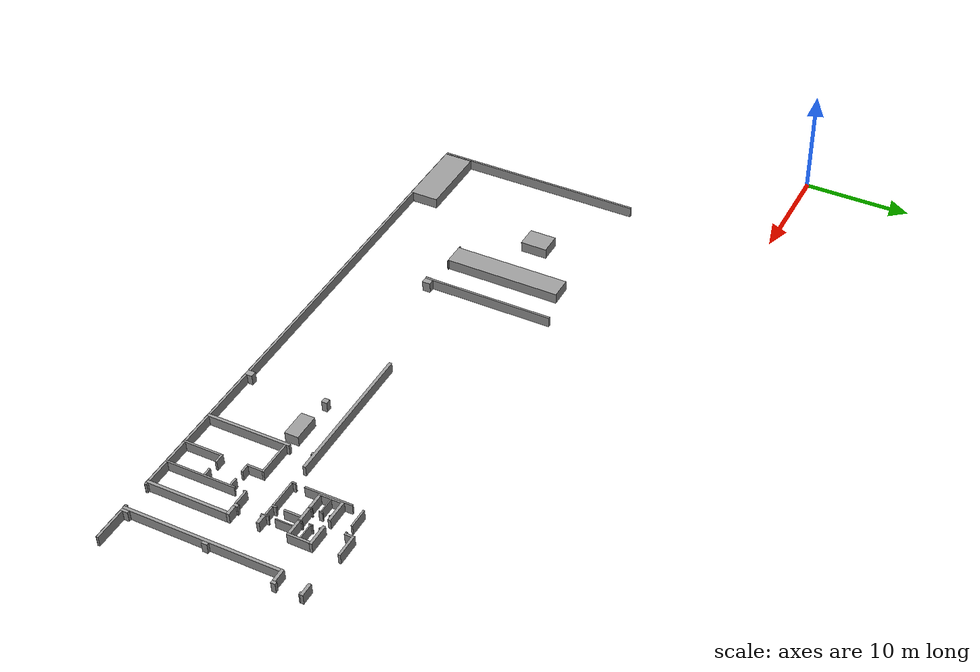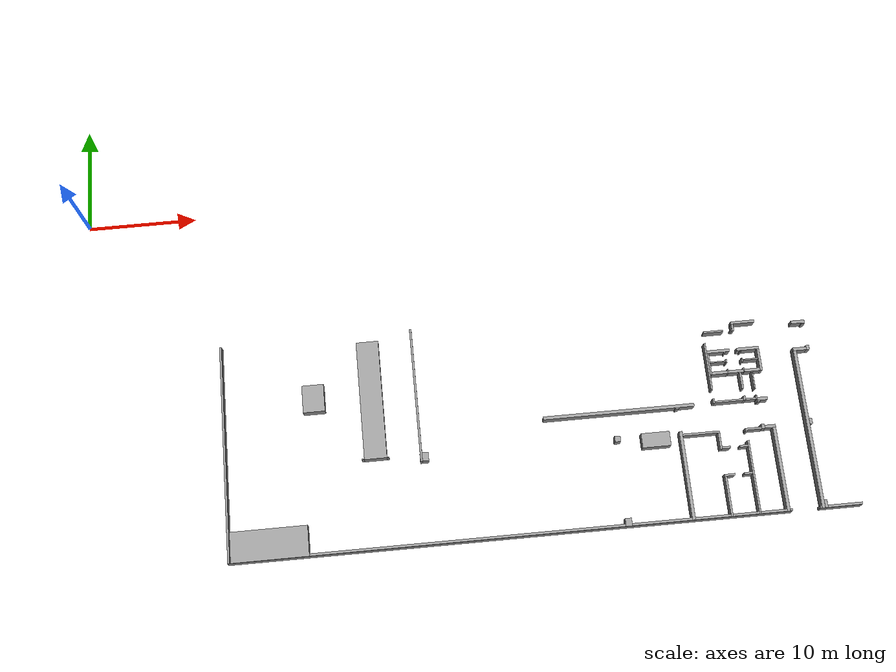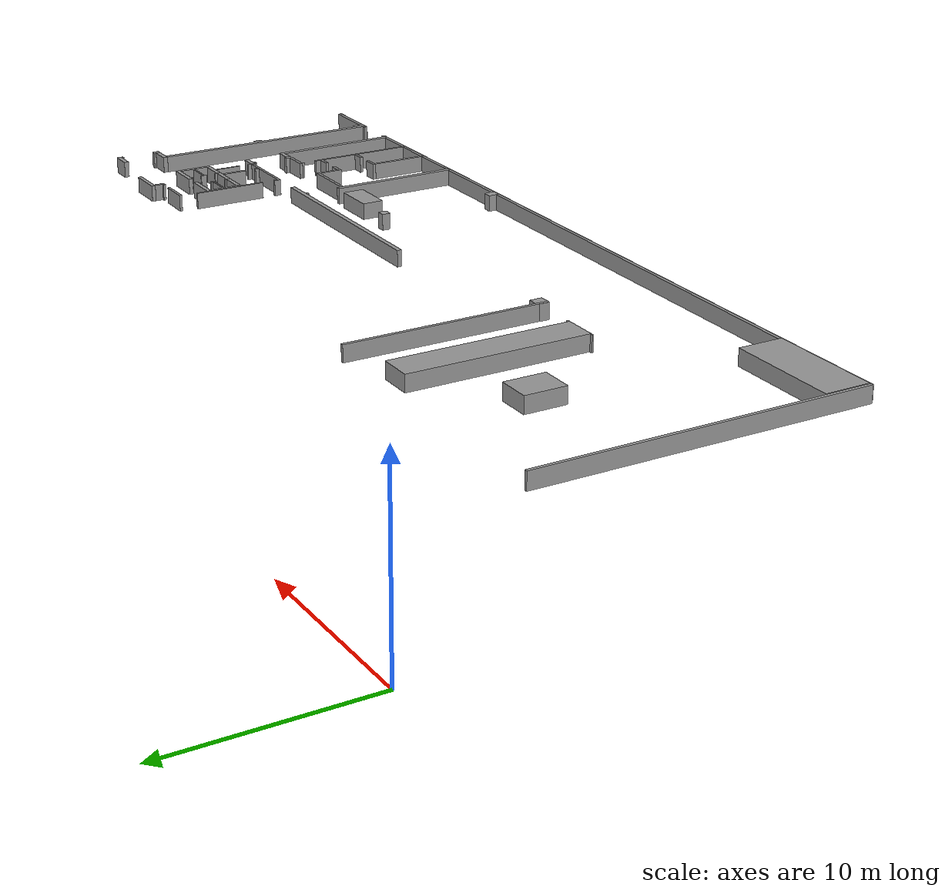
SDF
<sdf version="1.4">
 <model name="AdlerErfurtShopUpstairs">
  <static>1</static>
  <link name="Wall_76">
   <collision name="Wall_76_Collision">
    <geometry><box><size>0.17872 12.35745 1.00000</size></box></geometry>
    <pose>29.34894 -19.32766 0.50000 0 0 0.00000</pose>
   </collision>
   <visual name="Wall_76_Visual">
    <geometry><box><size>0.17872 12.35745 1.00000</size></box></geometry>
    <material>
     <script><uri>file://media/materials/scripts/gazebo.material</uri><name>Gazebo/Grey</name></script>
    </material>
    <pose>29.34894 -19.32766 0.50000 0 0 0.00000</pose>
   </visual>
  </link>
  <link name="Wall_77">
   <collision name="Wall_77_Collision">
    <geometry><box><size>0.17872 19.68511 1.00000</size></box></geometry>
    <pose>11.98723 -23.09362 0.50000 0 0 0.00000</pose>
   </collision>
   <visual name="Wall_77_Visual">
    <geometry><box><size>0.17872 19.68511 1.00000</size></box></geometry>
    <material>
     <script><uri>file://media/materials/scripts/gazebo.material</uri><name>Gazebo/Grey</name></script>
    </material>
    <pose>11.98723 -23.09362 0.50000 0 0 0.00000</pose>
   </visual>
  </link>
  <link name="Wall_78">
   <collision name="Wall_78_Collision">
    <geometry><box><size>2.01702 10.90213 1.00000</size></box></geometry>
    <pose>25.31489 -19.44255 0.50000 0 0 0.00000</pose>
   </collision>
   <visual name="Wall_78_Visual">
    <geometry><box><size>2.01702 10.90213 1.00000</size></box></geometry>
    <material>
     <script><uri>file://media/materials/scripts/gazebo.material</uri><name>Gazebo/Grey</name></script>
    </material>
    <pose>25.31489 -19.44255 0.50000 0 0 0.00000</pose>
   </visual>
  </link>
  <link name="Wall_79">
   <collision name="Wall_79_Collision">
    <geometry><box><size>2.14468 0.22979 1.00000</size></box></geometry>
    <pose>59.74468 -15.28085 0.50000 0 0 0.00000</pose>
   </collision>
   <visual name="Wall_79_Visual">
    <geometry><box><size>2.14468 0.22979 1.00000</size></box></geometry>
    <material>
     <script><uri>file://media/materials/scripts/gazebo.material</uri><name>Gazebo/Grey</name></script>
    </material>
    <pose>59.74468 -15.28085 0.50000 0 0 0.00000</pose>
   </visual>
  </link>
  <link name="Wall_80">
   <collision name="Wall_80_Collision">
    <geometry><box><size>0.17872 0.63830 1.00000</size></box></geometry>
    <pose>58.76170 -15.71489 0.50000 0 0 0.00000</pose>
   </collision>
   <visual name="Wall_80_Visual">
    <geometry><box><size>0.17872 0.63830 1.00000</size></box></geometry>
    <material>
     <script><uri>file://media/materials/scripts/gazebo.material</uri><name>Gazebo/Grey</name></script>
    </material>
    <pose>58.76170 -15.71489 0.50000 0 0 0.00000</pose>
   </visual>
  </link>
  <link name="Wall_81">
   <collision name="Wall_81_Collision">
    <geometry><box><size>1.22553 0.28085 1.00000</size></box></geometry>
    <pose>64.80000 -15.74043 0.50000 0 0 0.00000</pose>
   </collision>
   <visual name="Wall_81_Visual">
    <geometry><box><size>1.22553 0.28085 1.00000</size></box></geometry>
    <material>
     <script><uri>file://media/materials/scripts/gazebo.material</uri><name>Gazebo/Grey</name></script>
    </material>
    <pose>64.80000 -15.74043 0.50000 0 0 0.00000</pose>
   </visual>
  </link>
  <link name="Wall_82">
   <collision name="Wall_82_Collision">
    <geometry><box><size>1.81277 0.15319 1.00000</size></box></geometry>
    <pose>56.94894 -15.95745 0.50000 0 0 0.00000</pose>
   </collision>
   <visual name="Wall_82_Visual">
    <geometry><box><size>1.81277 0.15319 1.00000</size></box></geometry>
    <material>
     <script><uri>file://media/materials/scripts/gazebo.material</uri><name>Gazebo/Grey</name></script>
    </material>
    <pose>56.94894 -15.95745 0.50000 0 0 0.00000</pose>
   </visual>
  </link>
  <link name="Wall_83">
   <collision name="Wall_83_Collision">
    <geometry><box><size>0.12766 0.15319 1.00000</size></box></geometry>
    <pose>58.60851 -15.95745 0.50000 0 0 0.00000</pose>
   </collision>
   <visual name="Wall_83_Visual">
    <geometry><box><size>0.12766 0.15319 1.00000</size></box></geometry>
    <material>
     <script><uri>file://media/materials/scripts/gazebo.material</uri><name>Gazebo/Grey</name></script>
    </material>
    <pose>58.60851 -15.95745 0.50000 0 0 0.00000</pose>
   </visual>
  </link>
  <link name="Wall_84">
   <collision name="Wall_84_Collision">
    <geometry><box><size>0.28085 0.10213 1.00000</size></box></geometry>
    <pose>65.27234 -15.93191 0.50000 0 0 0.00000</pose>
   </collision>
   <visual name="Wall_84_Visual">
    <geometry><box><size>0.28085 0.10213 1.00000</size></box></geometry>
    <material>
     <script><uri>file://media/materials/scripts/gazebo.material</uri><name>Gazebo/Grey</name></script>
    </material>
    <pose>65.27234 -15.93191 0.50000 0 0 0.00000</pose>
   </visual>
  </link>
  <link name="Wall_85">
   <collision name="Wall_85_Collision">
    <geometry><box><size>0.15319 4.41702 1.00000</size></box></geometry>
    <pose>55.96596 -19.21277 0.50000 0 0 0.00000</pose>
   </collision>
   <visual name="Wall_85_Visual">
    <geometry><box><size>0.15319 4.41702 1.00000</size></box></geometry>
    <material>
     <script><uri>file://media/materials/scripts/gazebo.material</uri><name>Gazebo/Grey</name></script>
    </material>
    <pose>55.96596 -19.21277 0.50000 0 0 0.00000</pose>
   </visual>
  </link>
  <link name="Wall_86">
   <collision name="Wall_86_Collision">
    <geometry><box><size>1.96596 2.50213 1.00000</size></box></geometry>
    <pose>20.13191 -18.86809 0.50000 0 0 0.00000</pose>
   </collision>
   <visual name="Wall_86_Visual">
    <geometry><box><size>1.96596 2.50213 1.00000</size></box></geometry>
    <material>
     <script><uri>file://media/materials/scripts/gazebo.material</uri><name>Gazebo/Grey</name></script>
    </material>
    <pose>20.13191 -18.86809 0.50000 0 0 0.00000</pose>
   </visual>
  </link>
  <link name="Wall_87">
   <collision name="Wall_87_Collision">
    <geometry><box><size>2.06809 0.25532 1.00000</size></box></geometry>
    <pose>57.07660 -17.84681 0.50000 0 0 0.00000</pose>
   </collision>
   <visual name="Wall_87_Visual">
    <geometry><box><size>2.06809 0.25532 1.00000</size></box></geometry>
    <material>
     <script><uri>file://media/materials/scripts/gazebo.material</uri><name>Gazebo/Grey</name></script>
    </material>
    <pose>57.07660 -17.84681 0.50000 0 0 0.00000</pose>
   </visual>
  </link>
  <link name="Wall_88">
   <collision name="Wall_88_Collision">
    <geometry><box><size>2.01702 0.25532 1.00000</size></box></geometry>
    <pose>59.80851 -17.84681 0.50000 0 0 0.00000</pose>
   </collision>
   <visual name="Wall_88_Visual">
    <geometry><box><size>2.01702 0.25532 1.00000</size></box></geometry>
    <material>
     <script><uri>file://media/materials/scripts/gazebo.material</uri><name>Gazebo/Grey</name></script>
    </material>
    <pose>59.80851 -17.84681 0.50000 0 0 0.00000</pose>
   </visual>
  </link>
  <link name="Wall_89">
   <collision name="Wall_89_Collision">
    <geometry><box><size>0.15319 2.04255 1.00000</size></box></geometry>
    <pose>56.11915 -18.99574 0.50000 0 0 0.00000</pose>
   </collision>
   <visual name="Wall_89_Visual">
    <geometry><box><size>0.15319 2.04255 1.00000</size></box></geometry>
    <material>
     <script><uri>file://media/materials/scripts/gazebo.material</uri><name>Gazebo/Grey</name></script>
    </material>
    <pose>56.11915 -18.99574 0.50000 0 0 0.00000</pose>
   </visual>
  </link>
  <link name="Wall_90">
   <collision name="Wall_90_Collision">
    <geometry><box><size>0.10213 0.12766 1.00000</size></box></geometry>
    <pose>57.67660 -18.03830 0.50000 0 0 0.00000</pose>
   </collision>
   <visual name="Wall_90_Visual">
    <geometry><box><size>0.10213 0.12766 1.00000</size></box></geometry>
    <material>
     <script><uri>file://media/materials/scripts/gazebo.material</uri><name>Gazebo/Grey</name></script>
    </material>
    <pose>57.67660 -18.03830 0.50000 0 0 0.00000</pose>
   </visual>
  </link>
  <link name="Wall_91">
   <collision name="Wall_91_Collision">
    <geometry><box><size>0.10213 0.12766 1.00000</size></box></geometry>
    <pose>59.13191 -18.03830 0.50000 0 0 0.00000</pose>
   </collision>
   <visual name="Wall_91_Visual">
    <geometry><box><size>0.10213 0.12766 1.00000</size></box></geometry>
    <material>
     <script><uri>file://media/materials/scripts/gazebo.material</uri><name>Gazebo/Grey</name></script>
    </material>
    <pose>59.13191 -18.03830 0.50000 0 0 0.00000</pose>
   </visual>
  </link>
  <link name="Wall_92">
   <collision name="Wall_92_Collision">
    <geometry><box><size>0.20426 2.04255 1.00000</size></box></geometry>
    <pose>60.71489 -18.99574 0.50000 0 0 0.00000</pose>
   </collision>
   <visual name="Wall_92_Visual">
    <geometry><box><size>0.20426 2.04255 1.00000</size></box></geometry>
    <material>
     <script><uri>file://media/materials/scripts/gazebo.material</uri><name>Gazebo/Grey</name></script>
    </material>
    <pose>60.71489 -18.99574 0.50000 0 0 0.00000</pose>
   </visual>
  </link>
  <link name="Wall_93">
   <collision name="Wall_93_Collision">
    <geometry><box><size>0.28085 0.40851 1.00000</size></box></geometry>
    <pose>65.27234 -18.25532 0.50000 0 0 0.00000</pose>
   </collision>
   <visual name="Wall_93_Visual">
    <geometry><box><size>0.28085 0.40851 1.00000</size></box></geometry>
    <material>
     <script><uri>file://media/materials/scripts/gazebo.material</uri><name>Gazebo/Grey</name></script>
    </material>
    <pose>65.27234 -18.25532 0.50000 0 0 0.00000</pose>
   </visual>
  </link>
  <link name="Wall_94">
   <collision name="Wall_94_Collision">
    <geometry><box><size>1.22553 0.28085 1.00000</size></box></geometry>
    <pose>64.51915 -18.31915 0.50000 0 0 0.00000</pose>
   </collision>
   <visual name="Wall_94_Visual">
    <geometry><box><size>1.22553 0.28085 1.00000</size></box></geometry>
    <material>
     <script><uri>file://media/materials/scripts/gazebo.material</uri><name>Gazebo/Grey</name></script>
    </material>
    <pose>64.51915 -18.31915 0.50000 0 0 0.00000</pose>
   </visual>
  </link>
  <link name="Wall_95">
   <collision name="Wall_95_Collision">
    <geometry><box><size>0.28085 14.47660 1.00000</size></box></geometry>
    <pose>64.04681 -25.69787 0.50000 0 0 0.00000</pose>
   </collision>
   <visual name="Wall_95_Visual">
    <geometry><box><size>0.28085 14.47660 1.00000</size></box></geometry>
    <material>
     <script><uri>file://media/materials/scripts/gazebo.material</uri><name>Gazebo/Grey</name></script>
    </material>
    <pose>64.04681 -25.69787 0.50000 0 0 0.00000</pose>
   </visual>
  </link>
  <link name="Wall_96">
   <collision name="Wall_96_Collision">
    <geometry><box><size>0.10213 0.35745 1.00000</size></box></geometry>
    <pose>57.67660 -18.86809 0.50000 0 0 0.00000</pose>
   </collision>
   <visual name="Wall_96_Visual">
    <geometry><box><size>0.10213 0.35745 1.00000</size></box></geometry>
    <material>
     <script><uri>file://media/materials/scripts/gazebo.material</uri><name>Gazebo/Grey</name></script>
    </material>
    <pose>57.67660 -18.86809 0.50000 0 0 0.00000</pose>
   </visual>
  </link>
  <link name="Wall_97">
   <collision name="Wall_97_Collision">
    <geometry><box><size>0.10213 0.35745 1.00000</size></box></geometry>
    <pose>59.13191 -18.86809 0.50000 0 0 0.00000</pose>
   </collision>
   <visual name="Wall_97_Visual">
    <geometry><box><size>0.10213 0.35745 1.00000</size></box></geometry>
    <material>
     <script><uri>file://media/materials/scripts/gazebo.material</uri><name>Gazebo/Grey</name></script>
    </material>
    <pose>59.13191 -18.86809 0.50000 0 0 0.00000</pose>
   </visual>
  </link>
  <link name="Wall_98">
   <collision name="Wall_98_Collision">
    <geometry><box><size>1.42979 0.10213 1.00000</size></box></geometry>
    <pose>56.91064 -18.86809 0.50000 0 0 0.00000</pose>
   </collision>
   <visual name="Wall_98_Visual">
    <geometry><box><size>1.42979 0.10213 1.00000</size></box></geometry>
    <material>
     <script><uri>file://media/materials/scripts/gazebo.material</uri><name>Gazebo/Grey</name></script>
    </material>
    <pose>56.91064 -18.86809 0.50000 0 0 0.00000</pose>
   </visual>
  </link>
  <link name="Wall_99">
   <collision name="Wall_99_Collision">
    <geometry><box><size>1.42979 0.10213 1.00000</size></box></geometry>
    <pose>59.89787 -18.86809 0.50000 0 0 0.00000</pose>
   </collision>
   <visual name="Wall_99_Visual">
    <geometry><box><size>1.42979 0.10213 1.00000</size></box></geometry>
    <material>
     <script><uri>file://media/materials/scripts/gazebo.material</uri><name>Gazebo/Grey</name></script>
    </material>
    <pose>59.89787 -18.86809 0.50000 0 0 0.00000</pose>
   </visual>
  </link>
  <link name="Wall_100">
   <collision name="Wall_100_Collision">
    <geometry><box><size>0.10213 0.38298 1.00000</size></box></geometry>
    <pose>57.67660 -19.82553 0.50000 0 0 0.00000</pose>
   </collision>
   <visual name="Wall_100_Visual">
    <geometry><box><size>0.10213 0.38298 1.00000</size></box></geometry>
    <material>
     <script><uri>file://media/materials/scripts/gazebo.material</uri><name>Gazebo/Grey</name></script>
    </material>
    <pose>57.67660 -19.82553 0.50000 0 0 0.00000</pose>
   </visual>
  </link>
  <link name="Wall_101">
   <collision name="Wall_101_Collision">
    <geometry><box><size>0.10213 0.38298 1.00000</size></box></geometry>
    <pose>59.13191 -19.82553 0.50000 0 0 0.00000</pose>
   </collision>
   <visual name="Wall_101_Visual">
    <geometry><box><size>0.10213 0.38298 1.00000</size></box></geometry>
    <material>
     <script><uri>file://media/materials/scripts/gazebo.material</uri><name>Gazebo/Grey</name></script>
    </material>
    <pose>59.13191 -19.82553 0.50000 0 0 0.00000</pose>
   </visual>
  </link>
  <link name="Wall_102">
   <collision name="Wall_102_Collision">
    <geometry><box><size>1.42979 0.25532 1.00000</size></box></geometry>
    <pose>56.91064 -19.88936 0.50000 0 0 0.00000</pose>
   </collision>
   <visual name="Wall_102_Visual">
    <geometry><box><size>1.42979 0.25532 1.00000</size></box></geometry>
    <material>
     <script><uri>file://media/materials/scripts/gazebo.material</uri><name>Gazebo/Grey</name></script>
    </material>
    <pose>56.91064 -19.88936 0.50000 0 0 0.00000</pose>
   </visual>
  </link>
  <link name="Wall_103">
   <collision name="Wall_103_Collision">
    <geometry><box><size>1.35319 0.25532 1.00000</size></box></geometry>
    <pose>58.40426 -19.88936 0.50000 0 0 0.00000</pose>
   </collision>
   <visual name="Wall_103_Visual">
    <geometry><box><size>1.35319 0.25532 1.00000</size></box></geometry>
    <material>
     <script><uri>file://media/materials/scripts/gazebo.material</uri><name>Gazebo/Grey</name></script>
    </material>
    <pose>58.40426 -19.88936 0.50000 0 0 0.00000</pose>
   </visual>
  </link>
  <link name="Wall_104">
   <collision name="Wall_104_Collision">
    <geometry><box><size>1.42979 0.25532 1.00000</size></box></geometry>
    <pose>59.89787 -19.88936 0.50000 0 0 0.00000</pose>
   </collision>
   <visual name="Wall_104_Visual">
    <geometry><box><size>1.42979 0.25532 1.00000</size></box></geometry>
    <material>
     <script><uri>file://media/materials/scripts/gazebo.material</uri><name>Gazebo/Grey</name></script>
    </material>
    <pose>59.89787 -19.88936 0.50000 0 0 0.00000</pose>
   </visual>
  </link>
  <link name="Wall_105">
   <collision name="Wall_105_Collision">
    <geometry><box><size>0.17872 1.53191 1.00000</size></box></geometry>
    <pose>58.76170 -20.78298 0.50000 0 0 0.00000</pose>
   </collision>
   <visual name="Wall_105_Visual">
    <geometry><box><size>0.17872 1.53191 1.00000</size></box></geometry>
    <material>
     <script><uri>file://media/materials/scripts/gazebo.material</uri><name>Gazebo/Grey</name></script>
    </material>
    <pose>58.76170 -20.78298 0.50000 0 0 0.00000</pose>
   </visual>
  </link>
  <link name="Wall_106">
   <collision name="Wall_106_Collision">
    <geometry><box><size>0.10213 1.65957 1.00000</size></box></geometry>
    <pose>59.84681 -20.84681 0.50000 0 0 0.00000</pose>
   </collision>
   <visual name="Wall_106_Visual">
    <geometry><box><size>0.10213 1.65957 1.00000</size></box></geometry>
    <material>
     <script><uri>file://media/materials/scripts/gazebo.material</uri><name>Gazebo/Grey</name></script>
    </material>
    <pose>59.84681 -20.84681 0.50000 0 0 0.00000</pose>
   </visual>
  </link>
  <link name="Wall_107">
   <collision name="Wall_107_Collision">
    <geometry><box><size>0.15319 0.40851 1.00000</size></box></geometry>
    <pose>55.96596 -22.44255 0.50000 0 0 0.00000</pose>
   </collision>
   <visual name="Wall_107_Visual">
    <geometry><box><size>0.15319 0.40851 1.00000</size></box></geometry>
    <material>
     <script><uri>file://media/materials/scripts/gazebo.material</uri><name>Gazebo/Grey</name></script>
    </material>
    <pose>55.96596 -22.44255 0.50000 0 0 0.00000</pose>
   </visual>
  </link>
  <link name="Wall_108">
   <collision name="Wall_108_Collision">
    <geometry><box><size>0.17872 0.40851 1.00000</size></box></geometry>
    <pose>58.76170 -22.44255 0.50000 0 0 0.00000</pose>
   </collision>
   <visual name="Wall_108_Visual">
    <geometry><box><size>0.17872 0.40851 1.00000</size></box></geometry>
    <material>
     <script><uri>file://media/materials/scripts/gazebo.material</uri><name>Gazebo/Grey</name></script>
    </material>
    <pose>58.76170 -22.44255 0.50000 0 0 0.00000</pose>
   </visual>
  </link>
  <link name="Wall_109">
   <collision name="Wall_109_Collision">
    <geometry><box><size>0.10213 0.40851 1.00000</size></box></geometry>
    <pose>59.84681 -22.44255 0.50000 0 0 0.00000</pose>
   </collision>
   <visual name="Wall_109_Visual">
    <geometry><box><size>0.10213 0.40851 1.00000</size></box></geometry>
    <material>
     <script><uri>file://media/materials/scripts/gazebo.material</uri><name>Gazebo/Grey</name></script>
    </material>
    <pose>59.84681 -22.44255 0.50000 0 0 0.00000</pose>
   </visual>
  </link>
  <link name="Wall_110">
   <collision name="Wall_110_Collision">
    <geometry><box><size>13.63404 0.28085 1.00000</size></box></geometry>
    <pose>47.33617 -22.63404 0.50000 0 0 0.00000</pose>
   </collision>
   <visual name="Wall_110_Visual">
    <geometry><box><size>13.63404 0.28085 1.00000</size></box></geometry>
    <material>
     <script><uri>file://media/materials/scripts/gazebo.material</uri><name>Gazebo/Grey</name></script>
    </material>
    <pose>47.33617 -22.63404 0.50000 0 0 0.00000</pose>
   </visual>
  </link>
  <link name="Wall_111">
   <collision name="Wall_111_Collision">
    <geometry><box><size>2.62979 0.15319 1.00000</size></box></geometry>
    <pose>57.35745 -22.57021 0.50000 0 0 0.00000</pose>
   </collision>
   <visual name="Wall_111_Visual">
    <geometry><box><size>2.62979 0.15319 1.00000</size></box></geometry>
    <material>
     <script><uri>file://media/materials/scripts/gazebo.material</uri><name>Gazebo/Grey</name></script>
    </material>
    <pose>57.35745 -22.57021 0.50000 0 0 0.00000</pose>
   </visual>
  </link>
  <link name="Wall_112">
   <collision name="Wall_112_Collision">
    <geometry><box><size>0.94468 0.15319 1.00000</size></box></geometry>
    <pose>59.32340 -22.57021 0.50000 0 0 0.00000</pose>
   </collision>
   <visual name="Wall_112_Visual">
    <geometry><box><size>0.94468 0.15319 1.00000</size></box></geometry>
    <material>
     <script><uri>file://media/materials/scripts/gazebo.material</uri><name>Gazebo/Grey</name></script>
    </material>
    <pose>59.32340 -22.57021 0.50000 0 0 0.00000</pose>
   </visual>
  </link>
  <link name="Wall_113">
   <collision name="Wall_113_Collision">
    <geometry><box><size>0.91915 0.28085 1.00000</size></box></geometry>
    <pose>60.35745 -22.63404 0.50000 0 0 0.00000</pose>
   </collision>
   <visual name="Wall_113_Visual">
    <geometry><box><size>0.91915 0.28085 1.00000</size></box></geometry>
    <material>
     <script><uri>file://media/materials/scripts/gazebo.material</uri><name>Gazebo/Grey</name></script>
    </material>
    <pose>60.35745 -22.63404 0.50000 0 0 0.00000</pose>
   </visual>
  </link>
  <link name="Wall_114">
   <collision name="Wall_114_Collision">
    <geometry><box><size>0.05106 0.25532 1.00000</size></box></geometry>
    <pose>59.87234 -22.77447 0.50000 0 0 0.00000</pose>
   </collision>
   <visual name="Wall_114_Visual">
    <geometry><box><size>0.05106 0.25532 1.00000</size></box></geometry>
    <material>
     <script><uri>file://media/materials/scripts/gazebo.material</uri><name>Gazebo/Grey</name></script>
    </material>
    <pose>59.87234 -22.77447 0.50000 0 0 0.00000</pose>
   </visual>
  </link>
  <link name="Wall_115">
   <collision name="Wall_115_Collision">
    <geometry><box><size>0.28085 0.12766 1.00000</size></box></geometry>
    <pose>52.58298 -22.83830 0.50000 0 0 0.00000</pose>
   </collision>
   <visual name="Wall_115_Visual">
    <geometry><box><size>0.28085 0.12766 1.00000</size></box></geometry>
    <material>
     <script><uri>file://media/materials/scripts/gazebo.material</uri><name>Gazebo/Grey</name></script>
    </material>
    <pose>52.58298 -22.83830 0.50000 0 0 0.00000</pose>
   </visual>
  </link>
  <link name="Wall_116">
   <collision name="Wall_116_Collision">
    <geometry><box><size>0.22979 0.12766 1.00000</size></box></geometry>
    <pose>60.01277 -22.83830 0.50000 0 0 0.00000</pose>
   </collision>
   <visual name="Wall_116_Visual">
    <geometry><box><size>0.22979 0.12766 1.00000</size></box></geometry>
    <material>
     <script><uri>file://media/materials/scripts/gazebo.material</uri><name>Gazebo/Grey</name></script>
    </material>
    <pose>60.01277 -22.83830 0.50000 0 0 0.00000</pose>
   </visual>
  </link>
  <link name="Wall_117">
   <collision name="Wall_117_Collision">
    <geometry><box><size>0.56170 0.76596 1.00000</size></box></geometry>
    <pose>29.71915 -25.12340 0.50000 0 0 0.00000</pose>
   </collision>
   <visual name="Wall_117_Visual">
    <geometry><box><size>0.56170 0.76596 1.00000</size></box></geometry>
    <material>
     <script><uri>file://media/materials/scripts/gazebo.material</uri><name>Gazebo/Grey</name></script>
    </material>
    <pose>29.71915 -25.12340 0.50000 0 0 0.00000</pose>
   </visual>
  </link>
  <link name="Wall_118">
   <collision name="Wall_118_Collision">
    <geometry><box><size>0.20426 0.07660 1.00000</size></box></geometry>
    <pose>24.20426 -24.85532 0.50000 0 0 0.00000</pose>
   </collision>
   <visual name="Wall_118_Visual">
    <geometry><box><size>0.20426 0.07660 1.00000</size></box></geometry>
    <material>
     <script><uri>file://media/materials/scripts/gazebo.material</uri><name>Gazebo/Grey</name></script>
    </material>
    <pose>24.20426 -24.85532 0.50000 0 0 0.00000</pose>
   </visual>
  </link>
  <link name="Wall_119">
   <collision name="Wall_119_Collision">
    <geometry><box><size>0.17872 0.07660 1.00000</size></box></geometry>
    <pose>26.41277 -24.85532 0.50000 0 0 0.00000</pose>
   </collision>
   <visual name="Wall_119_Visual">
    <geometry><box><size>0.17872 0.07660 1.00000</size></box></geometry>
    <material>
     <script><uri>file://media/materials/scripts/gazebo.material</uri><name>Gazebo/Grey</name></script>
    </material>
    <pose>26.41277 -24.85532 0.50000 0 0 0.00000</pose>
   </visual>
  </link>
  <link name="Wall_120">
   <collision name="Wall_120_Collision">
    <geometry><box><size>2.55319 1.30213 1.00000</size></box></geometry>
    <pose>50.29787 -25.49362 0.50000 0 0 0.00000</pose>
   </collision>
   <visual name="Wall_120_Visual">
    <geometry><box><size>2.55319 1.30213 1.00000</size></box></geometry>
    <material>
     <script><uri>file://media/materials/scripts/gazebo.material</uri><name>Gazebo/Grey</name></script>
    </material>
    <pose>50.29787 -25.49362 0.50000 0 0 0.00000</pose>
   </visual>
  </link>
  <link name="Wall_121">
   <collision name="Wall_121_Collision">
    <geometry><box><size>0.25532 0.53617 1.00000</size></box></geometry>
    <pose>64.31489 -25.11064 0.50000 0 0 0.00000</pose>
   </collision>
   <visual name="Wall_121_Visual">
    <geometry><box><size>0.25532 0.53617 1.00000</size></box></geometry>
    <material>
     <script><uri>file://media/materials/scripts/gazebo.material</uri><name>Gazebo/Grey</name></script>
    </material>
    <pose>64.31489 -25.11064 0.50000 0 0 0.00000</pose>
   </visual>
  </link>
  <link name="Wall_122">
   <collision name="Wall_122_Collision">
    <geometry><box><size>0.51064 0.51064 1.00000</size></box></geometry>
    <pose>46.90213 -25.12340 0.50000 0 0 0.00000</pose>
   </collision>
   <visual name="Wall_122_Visual">
    <geometry><box><size>0.51064 0.51064 1.00000</size></box></geometry>
    <material>
     <script><uri>file://media/materials/scripts/gazebo.material</uri><name>Gazebo/Grey</name></script>
    </material>
    <pose>46.90213 -25.12340 0.50000 0 0 0.00000</pose>
   </visual>
  </link>
  <link name="Wall_123">
   <collision name="Wall_123_Collision">
    <geometry><box><size>0.02553 0.61277 1.00000</size></box></geometry>
    <pose>29.24681 -25.20000 0.50000 0 0 0.00000</pose>
   </collision>
   <visual name="Wall_123_Visual">
    <geometry><box><size>0.02553 0.61277 1.00000</size></box></geometry>
    <material>
     <script><uri>file://media/materials/scripts/gazebo.material</uri><name>Gazebo/Grey</name></script>
    </material>
    <pose>29.24681 -25.20000 0.50000 0 0 0.00000</pose>
   </visual>
  </link>
  <link name="Wall_124">
   <collision name="Wall_124_Collision">
    <geometry><box><size>0.28085 7.96596 1.00000</size></box></geometry>
    <pose>52.58298 -28.95319 0.50000 0 0 0.00000</pose>
   </collision>
   <visual name="Wall_124_Visual">
    <geometry><box><size>0.28085 7.96596 1.00000</size></box></geometry>
    <material>
     <script><uri>file://media/materials/scripts/gazebo.material</uri><name>Gazebo/Grey</name></script>
    </material>
    <pose>52.58298 -28.95319 0.50000 0 0 0.00000</pose>
   </visual>
  </link>
  <link name="Wall_125">
   <collision name="Wall_125_Collision">
    <geometry><box><size>0.28085 0.40851 1.00000</size></box></geometry>
    <pose>59.98723 -25.17447 0.50000 0 0 0.00000</pose>
   </collision>
   <visual name="Wall_125_Visual">
    <geometry><box><size>0.28085 0.40851 1.00000</size></box></geometry>
    <material>
     <script><uri>file://media/materials/scripts/gazebo.material</uri><name>Gazebo/Grey</name></script>
    </material>
    <pose>59.98723 -25.17447 0.50000 0 0 0.00000</pose>
   </visual>
  </link>
  <link name="Wall_126">
   <collision name="Wall_126_Collision">
    <geometry><box><size>0.97021 0.28085 1.00000</size></box></geometry>
    <pose>60.61277 -25.23830 0.50000 0 0 0.00000</pose>
   </collision>
   <visual name="Wall_126_Visual">
    <geometry><box><size>0.97021 0.28085 1.00000</size></box></geometry>
    <material>
     <script><uri>file://media/materials/scripts/gazebo.material</uri><name>Gazebo/Grey</name></script>
    </material>
    <pose>60.61277 -25.23830 0.50000 0 0 0.00000</pose>
   </visual>
  </link>
  <link name="Wall_127">
   <collision name="Wall_127_Collision">
    <geometry><box><size>3.31915 0.17872 1.00000</size></box></geometry>
    <pose>54.38298 -25.31489 0.50000 0 0 0.00000</pose>
   </collision>
   <visual name="Wall_127_Visual">
    <geometry><box><size>3.31915 0.17872 1.00000</size></box></geometry>
    <material>
     <script><uri>file://media/materials/scripts/gazebo.material</uri><name>Gazebo/Grey</name></script>
    </material>
    <pose>54.38298 -25.31489 0.50000 0 0 0.00000</pose>
   </visual>
  </link>
  <link name="Wall_128">
   <collision name="Wall_128_Collision">
    <geometry><box><size>1.48085 0.17872 1.00000</size></box></geometry>
    <pose>59.10638 -25.31489 0.50000 0 0 0.00000</pose>
   </collision>
   <visual name="Wall_128_Visual">
    <geometry><box><size>1.48085 0.17872 1.00000</size></box></geometry>
    <material>
     <script><uri>file://media/materials/scripts/gazebo.material</uri><name>Gazebo/Grey</name></script>
    </material>
    <pose>59.10638 -25.31489 0.50000 0 0 0.00000</pose>
   </visual>
  </link>
  <link name="Wall_129">
   <collision name="Wall_129_Collision">
    <geometry><box><size>0.05106 0.02553 1.00000</size></box></geometry>
    <pose>59.87234 -25.39149 0.50000 0 0 0.00000</pose>
   </collision>
   <visual name="Wall_129_Visual">
    <geometry><box><size>0.05106 0.02553 1.00000</size></box></geometry>
    <material>
     <script><uri>file://media/materials/scripts/gazebo.material</uri><name>Gazebo/Grey</name></script>
    </material>
    <pose>59.87234 -25.39149 0.50000 0 0 0.00000</pose>
   </visual>
  </link>
  <link name="Wall_130">
   <collision name="Wall_130_Collision">
    <geometry><box><size>0.28085 7.55745 1.00000</size></box></geometry>
    <pose>60.95745 -29.15745 0.50000 0 0 0.00000</pose>
   </collision>
   <visual name="Wall_130_Visual">
    <geometry><box><size>0.28085 7.55745 1.00000</size></box></geometry>
    <material>
     <script><uri>file://media/materials/scripts/gazebo.material</uri><name>Gazebo/Grey</name></script>
    </material>
    <pose>60.95745 -29.15745 0.50000 0 0 0.00000</pose>
   </visual>
  </link>
  <link name="Wall_131">
   <collision name="Wall_131_Collision">
    <geometry><box><size>0.17872 1.48085 1.00000</size></box></geometry>
    <pose>55.95319 -26.14468 0.50000 0 0 0.00000</pose>
   </collision>
   <visual name="Wall_131_Visual">
    <geometry><box><size>0.17872 1.48085 1.00000</size></box></geometry>
    <material>
     <script><uri>file://media/materials/scripts/gazebo.material</uri><name>Gazebo/Grey</name></script>
    </material>
    <pose>55.95319 -26.14468 0.50000 0 0 0.00000</pose>
   </visual>
  </link>
  <link name="Wall_132">
   <collision name="Wall_132_Collision">
    <geometry><box><size>0.15319 0.12766 1.00000</size></box></geometry>
    <pose>58.44255 -25.46809 0.50000 0 0 0.00000</pose>
   </collision>
   <visual name="Wall_132_Visual">
    <geometry><box><size>0.15319 0.12766 1.00000</size></box></geometry>
    <material>
     <script><uri>file://media/materials/scripts/gazebo.material</uri><name>Gazebo/Grey</name></script>
    </material>
    <pose>58.44255 -25.46809 0.50000 0 0 0.00000</pose>
   </visual>
  </link>
  <link name="Wall_133">
   <collision name="Wall_133_Collision">
    <geometry><box><size>0.15319 6.58723 1.00000</size></box></geometry>
    <pose>58.44255 -29.64255 0.50000 0 0 0.00000</pose>
   </collision>
   <visual name="Wall_133_Visual">
    <geometry><box><size>0.15319 6.58723 1.00000</size></box></geometry>
    <material>
     <script><uri>file://media/materials/scripts/gazebo.material</uri><name>Gazebo/Grey</name></script>
    </material>
    <pose>58.44255 -29.64255 0.50000 0 0 0.00000</pose>
   </visual>
  </link>
  <link name="Wall_134">
   <collision name="Wall_134_Collision">
    <geometry><box><size>0.74043 0.17872 1.00000</size></box></geometry>
    <pose>56.41277 -26.79574 0.50000 0 0 0.00000</pose>
   </collision>
   <visual name="Wall_134_Visual">
    <geometry><box><size>0.74043 0.17872 1.00000</size></box></geometry>
    <material>
     <script><uri>file://media/materials/scripts/gazebo.material</uri><name>Gazebo/Grey</name></script>
    </material>
    <pose>56.41277 -26.79574 0.50000 0 0 0.00000</pose>
   </visual>
  </link>
  <link name="Wall_135">
   <collision name="Wall_135_Collision">
    <geometry><box><size>0.74043 0.17872 1.00000</size></box></geometry>
    <pose>57.99574 -26.79574 0.50000 0 0 0.00000</pose>
   </collision>
   <visual name="Wall_135_Visual">
    <geometry><box><size>0.74043 0.17872 1.00000</size></box></geometry>
    <material>
     <script><uri>file://media/materials/scripts/gazebo.material</uri><name>Gazebo/Grey</name></script>
    </material>
    <pose>57.99574 -26.79574 0.50000 0 0 0.00000</pose>
   </visual>
  </link>
  <link name="Wall_136">
   <collision name="Wall_136_Collision">
    <geometry><box><size>0.91915 0.17872 1.00000</size></box></geometry>
    <pose>56.32340 -29.27234 0.50000 0 0 0.00000</pose>
   </collision>
   <visual name="Wall_136_Visual">
    <geometry><box><size>0.91915 0.17872 1.00000</size></box></geometry>
    <material>
     <script><uri>file://media/materials/scripts/gazebo.material</uri><name>Gazebo/Grey</name></script>
    </material>
    <pose>56.32340 -29.27234 0.50000 0 0 0.00000</pose>
   </visual>
  </link>
  <link name="Wall_137">
   <collision name="Wall_137_Collision">
    <geometry><box><size>0.74043 0.17872 1.00000</size></box></geometry>
    <pose>57.99574 -29.27234 0.50000 0 0 0.00000</pose>
   </collision>
   <visual name="Wall_137_Visual">
    <geometry><box><size>0.74043 0.17872 1.00000</size></box></geometry>
    <material>
     <script><uri>file://media/materials/scripts/gazebo.material</uri><name>Gazebo/Grey</name></script>
    </material>
    <pose>57.99574 -29.27234 0.50000 0 0 0.00000</pose>
   </visual>
  </link>
  <link name="Wall_138">
   <collision name="Wall_138_Collision">
    <geometry><box><size>0.17872 3.57447 1.00000</size></box></geometry>
    <pose>55.95319 -31.14894 0.50000 0 0 0.00000</pose>
   </collision>
   <visual name="Wall_138_Visual">
    <geometry><box><size>0.17872 3.57447 1.00000</size></box></geometry>
    <material>
     <script><uri>file://media/materials/scripts/gazebo.material</uri><name>Gazebo/Grey</name></script>
    </material>
    <pose>55.95319 -31.14894 0.50000 0 0 0.00000</pose>
   </visual>
  </link>
  <link name="Wall_139">
   <collision name="Wall_139_Collision">
    <geometry><box><size>6.81702 2.70638 1.00000</size></box></geometry>
    <pose>15.56170 -31.58298 0.50000 0 0 0.00000</pose>
   </collision>
   <visual name="Wall_139_Visual">
    <geometry><box><size>6.81702 2.70638 1.00000</size></box></geometry>
    <material>
     <script><uri>file://media/materials/scripts/gazebo.material</uri><name>Gazebo/Grey</name></script>
    </material>
    <pose>15.56170 -31.58298 0.50000 0 0 0.00000</pose>
   </visual>
  </link>
  <link name="Wall_140">
   <collision name="Wall_140_Collision">
    <geometry><box><size>0.56170 0.68936 1.00000</size></box></geometry>
    <pose>46.87660 -32.59149 0.50000 0 0 0.00000</pose>
   </collision>
   <visual name="Wall_140_Visual">
    <geometry><box><size>0.56170 0.68936 1.00000</size></box></geometry>
    <material>
     <script><uri>file://media/materials/scripts/gazebo.material</uri><name>Gazebo/Grey</name></script>
    </material>
    <pose>46.87660 -32.59149 0.50000 0 0 0.00000</pose>
   </visual>
  </link>
  <link name="Wall_141">
   <collision name="Wall_141_Collision">
    <geometry><box><size>0.25532 0.68936 1.00000</size></box></geometry>
    <pose>64.31489 -32.59149 0.50000 0 0 0.00000</pose>
   </collision>
   <visual name="Wall_141_Visual">
    <geometry><box><size>0.25532 0.68936 1.00000</size></box></geometry>
    <material>
     <script><uri>file://media/materials/scripts/gazebo.material</uri><name>Gazebo/Grey</name></script>
    </material>
    <pose>64.31489 -32.59149 0.50000 0 0 0.00000</pose>
   </visual>
  </link>
  <link name="Wall_142">
   <collision name="Wall_142_Collision">
    <geometry><box><size>27.62553 0.20426 1.00000</size></box></geometry>
    <pose>32.78298 -32.83404 0.50000 0 0 0.00000</pose>
   </collision>
   <visual name="Wall_142_Visual">
    <geometry><box><size>27.62553 0.20426 1.00000</size></box></geometry>
    <material>
     <script><uri>file://media/materials/scripts/gazebo.material</uri><name>Gazebo/Grey</name></script>
    </material>
    <pose>32.78298 -32.83404 0.50000 0 0 0.00000</pose>
   </visual>
  </link>
  <link name="Wall_143">
   <collision name="Wall_143_Collision">
    <geometry><box><size>5.28511 0.20426 1.00000</size></box></geometry>
    <pose>49.80000 -32.83404 0.50000 0 0 0.00000</pose>
   </collision>
   <visual name="Wall_143_Visual">
    <geometry><box><size>5.28511 0.20426 1.00000</size></box></geometry>
    <material>
     <script><uri>file://media/materials/scripts/gazebo.material</uri><name>Gazebo/Grey</name></script>
    </material>
    <pose>49.80000 -32.83404 0.50000 0 0 0.00000</pose>
   </visual>
  </link>
  <link name="Wall_144">
   <collision name="Wall_144_Collision">
    <geometry><box><size>3.14043 0.20426 1.00000</size></box></geometry>
    <pose>54.29362 -32.83404 0.50000 0 0 0.00000</pose>
   </collision>
   <visual name="Wall_144_Visual">
    <geometry><box><size>3.14043 0.20426 1.00000</size></box></geometry>
    <material>
     <script><uri>file://media/materials/scripts/gazebo.material</uri><name>Gazebo/Grey</name></script>
    </material>
    <pose>54.29362 -32.83404 0.50000 0 0 0.00000</pose>
   </visual>
  </link>
  <link name="Wall_145">
   <collision name="Wall_145_Collision">
    <geometry><box><size>2.32340 0.20426 1.00000</size></box></geometry>
    <pose>57.20426 -32.83404 0.50000 0 0 0.00000</pose>
   </collision>
   <visual name="Wall_145_Visual">
    <geometry><box><size>2.32340 0.20426 1.00000</size></box></geometry>
    <material>
     <script><uri>file://media/materials/scripts/gazebo.material</uri><name>Gazebo/Grey</name></script>
    </material>
    <pose>57.20426 -32.83404 0.50000 0 0 0.00000</pose>
   </visual>
  </link>
  <link name="Wall_146">
   <collision name="Wall_146_Collision">
    <geometry><box><size>2.29787 0.20426 1.00000</size></box></geometry>
    <pose>59.66809 -32.83404 0.50000 0 0 0.00000</pose>
   </collision>
   <visual name="Wall_146_Visual">
    <geometry><box><size>2.29787 0.20426 1.00000</size></box></geometry>
    <material>
     <script><uri>file://media/materials/scripts/gazebo.material</uri><name>Gazebo/Grey</name></script>
    </material>
    <pose>59.66809 -32.83404 0.50000 0 0 0.00000</pose>
   </visual>
  </link>
  <link name="Wall_147">
   <collision name="Wall_147_Collision">
    <geometry><box><size>0.20426 0.20426 1.00000</size></box></geometry>
    <pose>61.20000 -32.83404 0.50000 0 0 0.00000</pose>
   </collision>
   <visual name="Wall_147_Visual">
    <geometry><box><size>0.20426 0.20426 1.00000</size></box></geometry>
    <material>
     <script><uri>file://media/materials/scripts/gazebo.material</uri><name>Gazebo/Grey</name></script>
    </material>
    <pose>61.20000 -32.83404 0.50000 0 0 0.00000</pose>
   </visual>
  </link>
  <link name="Wall_148">
   <collision name="Wall_148_Collision">
    <geometry><box><size>0.15319 0.20426 1.00000</size></box></geometry>
    <pose>63.82979 -32.83404 0.50000 0 0 0.00000</pose>
   </collision>
   <visual name="Wall_148_Visual">
    <geometry><box><size>0.15319 0.20426 1.00000</size></box></geometry>
    <material>
     <script><uri>file://media/materials/scripts/gazebo.material</uri><name>Gazebo/Grey</name></script>
    </material>
    <pose>63.82979 -32.83404 0.50000 0 0 0.00000</pose>
   </visual>
  </link>
  <link name="Wall_149">
   <collision name="Wall_149_Collision">
    <geometry><box><size>3.06383 0.20426 1.00000</size></box></geometry>
    <pose>65.97447 -32.83404 0.50000 0 0 0.00000</pose>
   </collision>
   <visual name="Wall_149_Visual">
    <geometry><box><size>3.06383 0.20426 1.00000</size></box></geometry>
    <material>
     <script><uri>file://media/materials/scripts/gazebo.material</uri><name>Gazebo/Grey</name></script>
    </material>
    <pose>65.97447 -32.83404 0.50000 0 0 0.00000</pose>
   </visual>
  </link>
  <link name="Wall_150">
   <collision name="Wall_150_Collision">
    <geometry><box><size>49.40426 0.02553 1.00000</size></box></geometry>
    <pose>36.60000 -32.94894 0.50000 0 0 0.00000</pose>
   </collision>
   <visual name="Wall_150_Visual">
    <geometry><box><size>49.40426 0.02553 1.00000</size></box></geometry>
    <material>
     <script><uri>file://media/materials/scripts/gazebo.material</uri><name>Gazebo/Grey</name></script>
    </material>
    <pose>36.60000 -32.94894 0.50000 0 0 0.00000</pose>
   </visual>
  </link>
  <link name="Wall_151">
   <collision name="Wall_151_Collision">
    <geometry><box><size>3.75319 0.02553 1.00000</size></box></geometry>
    <pose>65.62979 -32.94894 0.50000 0 0 0.00000</pose>
   </collision>
   <visual name="Wall_151_Visual">
    <geometry><box><size>3.75319 0.02553 1.00000</size></box></geometry>
    <material>
     <script><uri>file://media/materials/scripts/gazebo.material</uri><name>Gazebo/Grey</name></script>
    </material>
    <pose>65.62979 -32.94894 0.50000 0 0 0.00000</pose>
   </visual>
  </link>
 </model>
</sdf>
